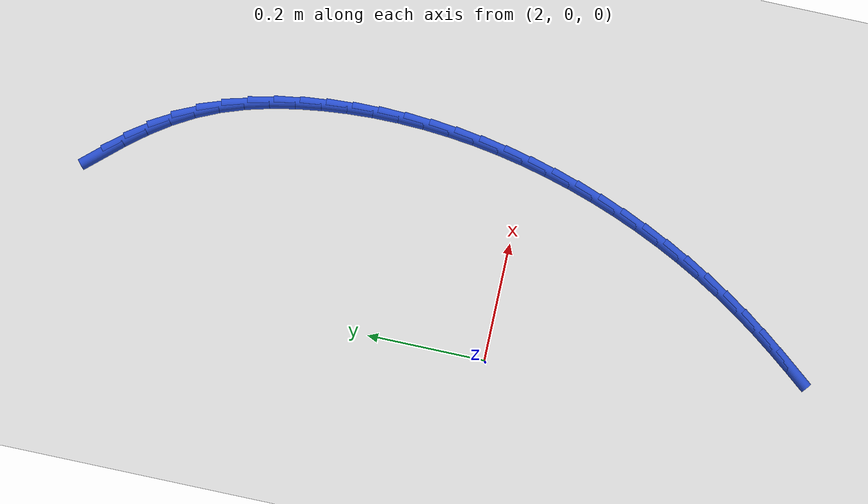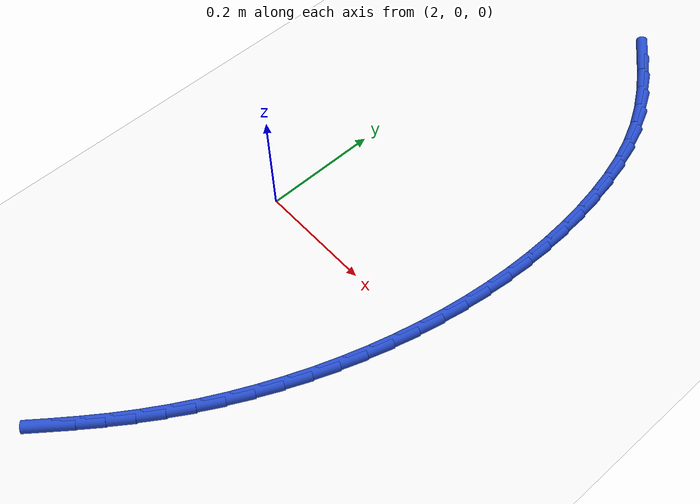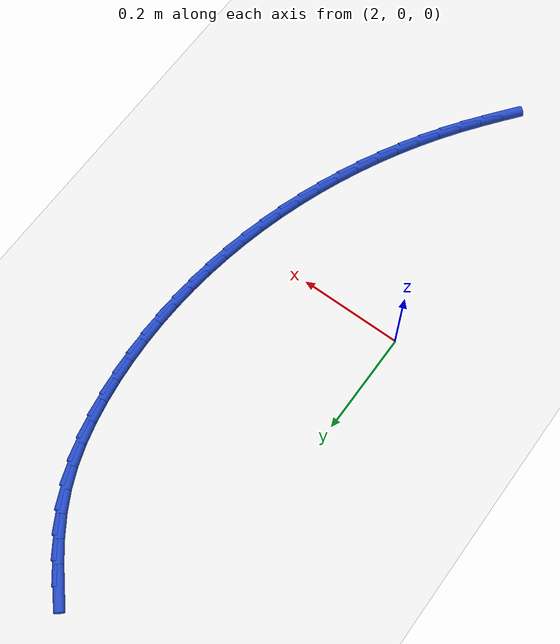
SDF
<sdf version="1.6">
 <world name="default">
  <model name="ground_plane">
   <static>1</static>
   <link name="link">
    <collision name="collision">
     <geometry><plane><normal>0 0 1</normal><size>100 100</size></plane></geometry>
     <surface><friction><ode><mu>100</mu><mu2>50</mu2></ode></friction></surface>
    </collision>
    <visual name="visual">
     <cast_shadows>0</cast_shadows>
     <geometry><plane><normal>0 0 1</normal><size>100 100</size></plane></geometry>
     <material>
      <script><uri>file://media/materials/scripts/gazebo.material</uri><name>Gazebo/WhiteGlow</name></script>
     </material>
    </visual>
   </link>
  </model>
  <model name="line">
   <link name="link_75">
    <pose>2.2055966614077804 0.6998486860032445 0.01 0 1.57 -0.8511564677329482</pose>
    <collision name="collision">
     <geometry><cylinder><radius>0.01</radius><length>0.08</length></cylinder></geometry>
    </collision>
    <visual name="visual">
     <material>
      <script><name>Gazebo/Blue</name><uri>file://media/materials/scripts/gazebo.material</uri></script>
     </material>
     <geometry><cylinder><radius>0.01</radius><length>0.08</length></cylinder></geometry>
    </visual>
   </link>
   <link name="link_76">
    <pose>2.234152752203104 0.6672664367167147 0.01 0 1.57 -0.9061840946297226</pose>
    <collision name="collision">
     <geometry><cylinder><radius>0.01</radius><length>0.08</length></cylinder></geometry>
    </collision>
    <visual name="visual">
     <material>
      <script><name>Gazebo/Blue</name><uri>file://media/materials/scripts/gazebo.material</uri></script>
     </material>
     <geometry><cylinder><radius>0.01</radius><length>0.08</length></cylinder></geometry>
    </visual>
   </link>
   <link name="link_77">
    <pose>2.260636000348213 0.6334661702110213 0.01 0 1.57 -0.974715701740778</pose>
    <collision name="collision">
     <geometry><cylinder><radius>0.01</radius><length>0.08</length></cylinder></geometry>
    </collision>
    <visual name="visual">
     <material>
      <script><name>Gazebo/Blue</name><uri>file://media/materials/scripts/gazebo.material</uri></script>
     </material>
     <geometry><cylinder><radius>0.01</radius><length>0.08</length></cylinder></geometry>
    </visual>
   </link>
   <link name="link_78">
    <pose>2.284555994221685 0.5982066597479292 0.01 0 1.57 -1.056839253274292</pose>
    <collision name="collision">
     <geometry><cylinder><radius>0.01</radius><length>0.08</length></cylinder></geometry>
    </collision>
    <visual name="visual">
     <material>
      <script><name>Gazebo/Blue</name><uri>file://media/materials/scripts/gazebo.material</uri></script>
     </material>
     <geometry><cylinder><radius>0.01</radius><length>0.08</length></cylinder></geometry>
    </visual>
   </link>
   <link name="link_79">
    <pose>2.305422322202104 0.5612466785892034 0.01 0 1.57 -1.150188257124627</pose>
    <collision name="collision">
     <geometry><cylinder><radius>0.01</radius><length>0.08</length></cylinder></geometry>
    </collision>
    <visual name="visual">
     <material>
      <script><name>Gazebo/Blue</name><uri>file://media/materials/scripts/gazebo.material</uri></script>
     </material>
     <geometry><cylinder><radius>0.01</radius><length>0.08</length></cylinder></geometry>
    </visual>
   </link>
   <link name="link_80">
    <pose>2.322803649396738 0.5223885377841972 0.01 0 1.57 -1.2386437156962118</pose>
    <collision name="collision">
     <geometry><cylinder><radius>0.01</radius><length>0.08</length></cylinder></geometry>
    </collision>
    <visual name="visual">
     <material>
      <script><name>Gazebo/Blue</name><uri>file://media/materials/scripts/gazebo.material</uri></script>
     </material>
     <geometry><cylinder><radius>0.01</radius><length>0.08</length></cylinder></geometry>
    </visual>
   </link>
   <link name="link_81">
    <pose>2.3367959409929715 0.4818231528191232 0.01 0 1.57 -1.3144554252186609</pose>
    <collision name="collision">
     <geometry><cylinder><radius>0.01</radius><length>0.08</length></cylinder></geometry>
    </collision>
    <visual name="visual">
     <material>
      <script><name>Gazebo/Blue</name><uri>file://media/materials/scripts/gazebo.material</uri></script>
     </material>
     <geometry><cylinder><radius>0.01</radius><length>0.08</length></cylinder></geometry>
    </visual>
   </link>
   <link name="link_82">
    <pose>2.347772326442757 0.4399457009791416 0.01 0 1.57 -1.378403704490149</pose>
    <collision name="collision">
     <geometry><cylinder><radius>0.01</radius><length>0.08</length></cylinder></geometry>
    </collision>
    <visual name="visual">
     <material>
      <script><name>Gazebo/Blue</name><uri>file://media/materials/scripts/gazebo.material</uri></script>
     </material>
     <geometry><cylinder><radius>0.01</radius><length>0.08</length></cylinder></geometry>
    </visual>
   </link>
   <link name="link_83">
    <pose>2.356108400240278 0.39715317621203894 0.01 0 1.57 -1.431591035259795</pose>
    <collision name="collision">
     <geometry><cylinder><radius>0.01</radius><length>0.08</length></cylinder></geometry>
    </collision>
    <visual name="visual">
     <material>
      <script><name>Gazebo/Blue</name><uri>file://media/materials/scripts/gazebo.material</uri></script>
     </material>
     <geometry><cylinder><radius>0.01</radius><length>0.08</length></cylinder></geometry>
    </visual>
   </link>
   <link name="link_84">
    <pose>2.3621770832783873 0.3538399345884121 0.01 0 1.57 -1.478226363358687</pose>
    <collision name="collision">
     <geometry><cylinder><radius>0.01</radius><length>0.08</length></cylinder></geometry>
    </collision>
    <visual name="visual">
     <material>
      <script><name>Gazebo/Blue</name><uri>file://media/materials/scripts/gazebo.material</uri></script>
     </material>
     <geometry><cylinder><radius>0.01</radius><length>0.08</length></cylinder></geometry>
    </visual>
   </link>
   <link name="link_85">
    <pose>2.366221683253419 0.31027245084862015 0.01 0 1.57 -1.5233014958636724</pose>
    <collision name="collision">
     <geometry><cylinder><radius>0.01</radius><length>0.08</length></cylinder></geometry>
    </collision>
    <visual name="visual">
     <material>
      <script><name>Gazebo/Blue</name><uri>file://media/materials/scripts/gazebo.material</uri></script>
     </material>
     <geometry><cylinder><radius>0.01</radius><length>0.08</length></cylinder></geometry>
    </visual>
   </link>
   <link name="link_86">
    <pose>2.3683005625056257 0.2665347255807631 0.01 0 1.57 -1.5672072031236706</pose>
    <collision name="collision">
     <geometry><cylinder><radius>0.01</radius><length>0.08</length></cylinder></geometry>
    </collision>
    <visual name="visual">
     <material>
      <script><name>Gazebo/Blue</name><uri>file://media/materials/scripts/gazebo.material</uri></script>
     </material>
     <geometry><cylinder><radius>0.01</radius><length>0.08</length></cylinder></geometry>
    </visual>
   </link>
   <link name="link_87">
    <pose>2.368457903030681 0.222696768503364 0.01 0 1.57 1.531607656492068</pose>
    <collision name="collision">
     <geometry><cylinder><radius>0.01</radius><length>0.08</length></cylinder></geometry>
    </collision>
    <visual name="visual">
     <material>
      <script><name>Gazebo/Blue</name><uri>file://media/materials/scripts/gazebo.material</uri></script>
     </material>
     <geometry><cylinder><radius>0.01</radius><length>0.08</length></cylinder></geometry>
    </visual>
   </link>
   <link name="link_88">
    <pose>2.3667378868242612 0.17882858933494603 0.01 0 1.57 1.489902709570134</pose>
    <collision name="collision">
     <geometry><cylinder><radius>0.01</radius><length>0.08</length></cylinder></geometry>
    </collision>
    <visual name="visual">
     <material>
      <script><name>Gazebo/Blue</name><uri>file://media/materials/scripts/gazebo.material</uri></script>
     </material>
     <geometry><cylinder><radius>0.01</radius><length>0.08</length></cylinder></geometry>
    </visual>
   </link>
   <link name="link_89">
    <pose>2.36318469588204 0.13500019779403347 0.01 0 1.57 1.4492043490882769</pose>
    <collision name="collision">
     <geometry><cylinder><radius>0.01</radius><length>0.08</length></cylinder></geometry>
    </collision>
    <visual name="visual">
     <material>
      <script><name>Gazebo/Blue</name><uri>file://media/materials/scripts/gazebo.material</uri></script>
     </material>
     <geometry><cylinder><radius>0.01</radius><length>0.08</length></cylinder></geometry>
    </visual>
   </link>
   <link name="link_90">
    <pose>2.357842512199692 0.09128160359914944 0.01 0 1.57 1.4094372169627292</pose>
    <collision name="collision">
     <geometry><cylinder><radius>0.01</radius><length>0.08</length></cylinder></geometry>
    </collision>
    <visual name="visual">
     <material>
      <script><name>Gazebo/Blue</name><uri>file://media/materials/scripts/gazebo.material</uri></script>
     </material>
     <geometry><cylinder><radius>0.01</radius><length>0.08</length></cylinder></geometry>
    </visual>
   </link>
   <link name="link_91">
    <pose>2.3507555177728925 0.04774281646881746 0.01 0 1.57 1.3705186615403797</pose>
    <collision name="collision">
     <geometry><cylinder><radius>0.01</radius><length>0.08</length></cylinder></geometry>
    </collision>
    <visual name="visual">
     <material>
      <script><name>Gazebo/Blue</name><uri>file://media/materials/scripts/gazebo.material</uri></script>
     </material>
     <geometry><cylinder><radius>0.01</radius><length>0.08</length></cylinder></geometry>
    </visual>
   </link>
   <link name="link_92">
    <pose>2.3419678945973157 0.004453846121560145 0.01 0 1.57 1.3323602420389082</pose>
    <collision name="collision">
     <geometry><cylinder><radius>0.01</radius><length>0.08</length></cylinder></geometry>
    </collision>
    <visual name="visual">
     <material>
      <script><name>Gazebo/Blue</name><uri>file://media/materials/scripts/gazebo.material</uri></script>
     </material>
     <geometry><cylinder><radius>0.01</radius><length>0.08</length></cylinder></geometry>
    </visual>
   </link>
   <link name="link_93">
    <pose>2.3315238246686367 -0.03851529772409714 0.01 0 1.57 1.2948689438541643</pose>
    <collision name="collision">
     <geometry><cylinder><radius>0.01</radius><length>0.08</length></cylinder></geometry>
    </collision>
    <visual name="visual">
     <material>
      <script><name>Gazebo/Blue</name><uri>file://media/materials/scripts/gazebo.material</uri></script>
     </material>
     <geometry><cylinder><radius>0.01</radius><length>0.08</length></cylinder></geometry>
    </visual>
   </link>
   <link name="link_94">
    <pose>2.31946748998253 -0.08109460534963189 0.01 0 1.57 1.2579481261111132</pose>
    <collision name="collision">
     <geometry><cylinder><radius>0.01</radius><length>0.08</length></cylinder></geometry>
    </collision>
    <visual name="visual">
     <material>
      <script><name>Gazebo/Blue</name><uri>file://media/materials/scripts/gazebo.material</uri></script>
     </material>
     <geometry><cylinder><radius>0.01</radius><length>0.08</length></cylinder></geometry>
    </visual>
   </link>
   <link name="link_95">
    <pose>2.30584307253467 -0.12321406703652049 0.01 0 1.57 1.2214982293870622</pose>
    <collision name="collision">
     <geometry><cylinder><radius>0.01</radius><length>0.08</length></cylinder></geometry>
    </collision>
    <visual name="visual">
     <material>
      <script><name>Gazebo/Blue</name><uri>file://media/materials/scripts/gazebo.material</uri></script>
     </material>
     <geometry><cylinder><radius>0.01</radius><length>0.08</length></cylinder></geometry>
    </visual>
   </link>
   <link name="link_96">
    <pose>2.2906947543207323 -0.1648036730662396 0.01 0 1.57 1.1854172748314469</pose>
    <collision name="collision">
     <geometry><cylinder><radius>0.01</radius><length>0.08</length></cylinder></geometry>
    </collision>
    <visual name="visual">
     <material>
      <script><name>Gazebo/Blue</name><uri>file://media/materials/scripts/gazebo.material</uri></script>
     </material>
     <geometry><cylinder><radius>0.01</radius><length>0.08</length></cylinder></geometry>
    </visual>
   </link>
   <link name="link_97">
    <pose>2.274066717336391 -0.20579341372026555 0.01 0 1.57 1.1496011870572642</pose>
    <collision name="collision">
     <geometry><cylinder><radius>0.01</radius><length>0.08</length></cylinder></geometry>
    </collision>
    <visual name="visual">
     <material>
      <script><name>Gazebo/Blue</name><uri>file://media/materials/scripts/gazebo.material</uri></script>
     </material>
     <geometry><cylinder><radius>0.01</radius><length>0.08</length></cylinder></geometry>
    </visual>
   </link>
   <link name="link_98">
    <pose>2.2560031435773196 -0.2461132792800756 0.01 0 1.57 1.113943973116476</pose>
    <collision name="collision">
     <geometry><cylinder><radius>0.01</radius><length>0.08</length></cylinder></geometry>
    </collision>
    <visual name="visual">
     <material>
      <script><name>Gazebo/Blue</name><uri>file://media/materials/scripts/gazebo.material</uri></script>
     </material>
     <geometry><cylinder><radius>0.01</radius><length>0.08</length></cylinder></geometry>
    </visual>
   </link>
   <link name="link_99">
    <pose>2.2365482150391953 -0.28569326002714474 0.01 0 1.57 1.0783377893461303</pose>
    <collision name="collision">
     <geometry><cylinder><radius>0.01</radius><length>0.08</length></cylinder></geometry>
    </collision>
    <visual name="visual">
     <material>
      <script><name>Gazebo/Blue</name><uri>file://media/materials/scripts/gazebo.material</uri></script>
     </material>
     <geometry><cylinder><radius>0.01</radius><length>0.08</length></cylinder></geometry>
    </visual>
   </link>
   <link name="link_100">
    <pose>2.215746113717691 -0.3244633462429502 0.01 0 1.57 1.0426729274731616</pose>
    <collision name="collision">
     <geometry><cylinder><radius>0.01</radius><length>0.08</length></cylinder></geometry>
    </collision>
    <visual name="visual">
     <material>
      <script><name>Gazebo/Blue</name><uri>file://media/materials/scripts/gazebo.material</uri></script>
     </material>
     <geometry><cylinder><radius>0.01</radius><length>0.08</length></cylinder></geometry>
    </visual>
   </link>
   <link name="link_101">
    <pose>2.193641021608482 -0.3623535282089685 0.01 0 1.57 1.0068377515453415</pose>
    <collision name="collision">
     <geometry><cylinder><radius>0.01</radius><length>0.08</length></cylinder></geometry>
    </collision>
    <visual name="visual">
     <material>
      <script><name>Gazebo/Blue</name><uri>file://media/materials/scripts/gazebo.material</uri></script>
     </material>
     <geometry><cylinder><radius>0.01</radius><length>0.08</length></cylinder></geometry>
    </visual>
   </link>
   <link name="link_102">
    <pose>2.170277120707243 -0.39929379620667604 0.01 0 1.57 0.9707872699723588</pose>
    <collision name="collision">
     <geometry><cylinder><radius>0.01</radius><length>0.08</length></cylinder></geometry>
    </collision>
    <visual name="visual">
     <material>
      <script><name>Gazebo/Blue</name><uri>file://media/materials/scripts/gazebo.material</uri></script>
     </material>
     <geometry><cylinder><radius>0.01</radius><length>0.08</length></cylinder></geometry>
    </visual>
   </link>
   <link name="link_103">
    <pose>2.145700587096909 -0.4352165176363161 0.01 0 1.57 0.9381528869912045</pose>
    <collision name="collision">
     <geometry><cylinder><radius>0.01</radius><length>0.08</length></cylinder></geometry>
    </collision>
    <visual name="visual">
     <material>
      <script><name>Gazebo/Blue</name><uri>file://media/materials/scripts/gazebo.material</uri></script>
     </material>
     <geometry><cylinder><radius>0.01</radius><length>0.08</length></cylinder></geometry>
    </visual>
   </link>
   <link name="link_104">
    <pose>2.120064910053845 -0.4701819861984745 0.01 0 1.57 0.9145723961511887</pose>
    <collision name="collision">
     <geometry><cylinder><radius>0.01</radius><length>0.08</length></cylinder></geometry>
    </collision>
    <visual name="visual">
     <material>
      <script><name>Gazebo/Blue</name><uri>file://media/materials/scripts/gazebo.material</uri></script>
     </material>
     <geometry><cylinder><radius>0.01</radius><length>0.08</length></cylinder></geometry>
    </visual>
   </link>
   <link name="link_105">
    <pose>2.093683186179049 -0.504440760871449 0.01 0 1.57 0.900629796558443</pose>
    <collision name="collision">
     <geometry><cylinder><radius>0.01</radius><length>0.08</length></cylinder></geometry>
    </collision>
    <visual name="visual">
     <material>
      <script><name>Gazebo/Blue</name><uri>file://media/materials/scripts/gazebo.material</uri></script>
     </material>
     <geometry><cylinder><radius>0.01</radius><length>0.08</length></cylinder></geometry>
    </visual>
   </link>
  </model>
 </world>
</sdf>
